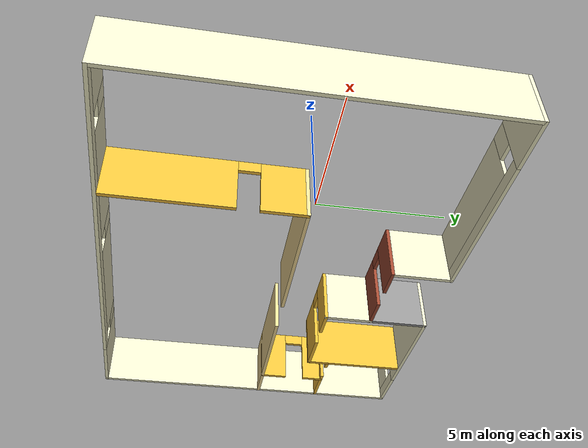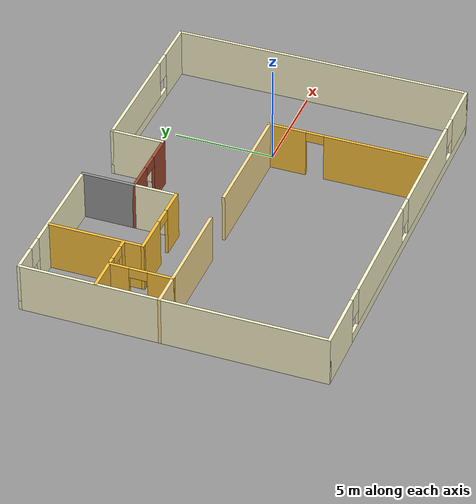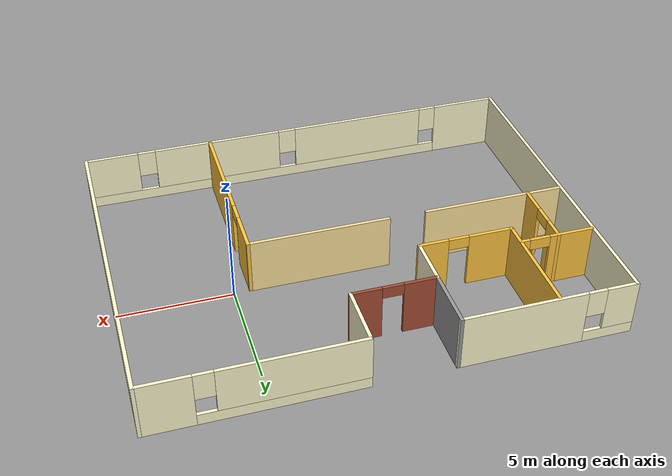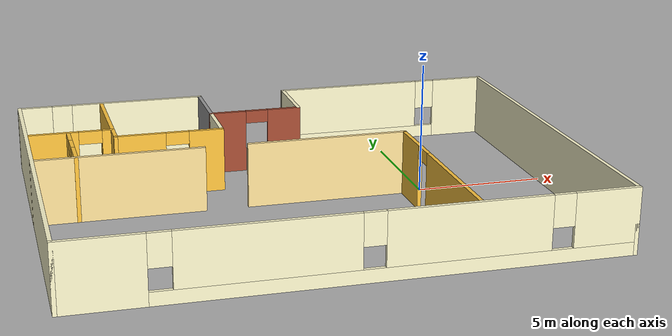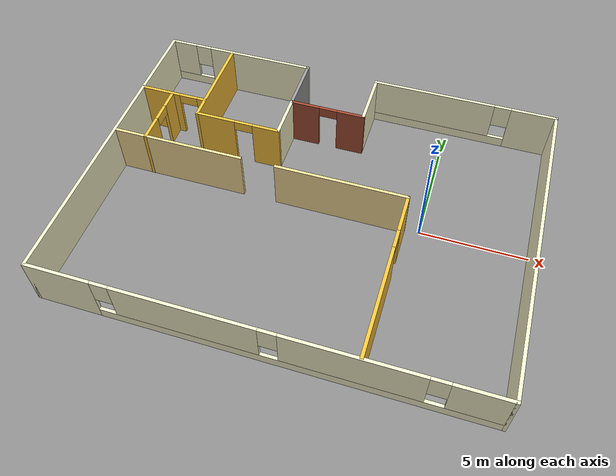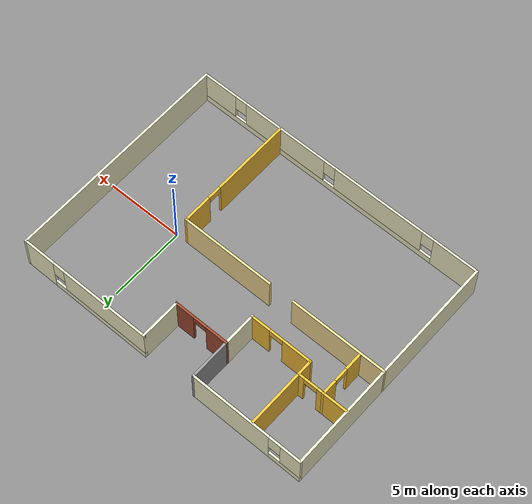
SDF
<?xml version='1.0'?>
<sdf version='1.6'>
  <model name='myHouse'>
    <pose frame=''>-4.93284 -0.706794 0 0 -0 0</pose>
    <link name='Wall_10'>
      <pose frame=''>-6.22482 7.425 0 0 -0 3.14159</pose>
      <visual name='Wall_10_Visual_0'>
        <pose frame=''>-1.08871 0 1.25 0 -0 0</pose>
        <geometry>
          <box>
            <size>5.37259 0.15 2.5</size>
          </box>
        </geometry>
        <material>
          <script>
            <uri>file://media/materials/scripts/gazebo.material</uri>
            <name>Gazebo/Grey</name>
          </script>
          <ambient>1 0.980392 0.811765 1</ambient>
        </material>
        <meta>
          <layer>0</layer>
        </meta>
      </visual>
      <collision name='Wall_10_Collision_0'>
        <geometry>
          <box>
            <size>5.37259 0.15 2.5</size>
          </box>
        </geometry>
        <pose frame=''>-1.08871 0 1.25 0 -0 0</pose>
      </collision>
      <visual name='Wall_10_Visual_1'>
        <pose frame=''>2.68629 0 0.25 0 -0 0</pose>
        <geometry>
          <box>
            <size>2.17741 0.15 0.5</size>
          </box>
        </geometry>
        <material>
          <script>
            <uri>file://media/materials/scripts/gazebo.material</uri>
            <name>Gazebo/Grey</name>
          </script>
          <ambient>1 0.980392 0.811765 1</ambient>
        </material>
        <meta>
          <layer>0</layer>
        </meta>
      </visual>
      <collision name='Wall_10_Collision_1'>
        <geometry>
          <box>
            <size>2.17741 0.15 0.5</size>
          </box>
        </geometry>
        <pose frame=''>2.68629 0 0.25 0 -0 0</pose>
      </collision>
      <visual name='Wall_10_Visual_2'>
        <pose frame=''>3.08629 0 1.5 0 -0 0</pose>
        <geometry>
          <box>
            <size>1.37741 0.15 2</size>
          </box>
        </geometry>
        <material>
          <script>
            <uri>file://media/materials/scripts/gazebo.material</uri>
            <name>Gazebo/Grey</name>
          </script>
          <ambient>1 0.980392 0.811765 1</ambient>
        </material>
        <meta>
          <layer>0</layer>
        </meta>
      </visual>
      <collision name='Wall_10_Collision_2'>
        <geometry>
          <box>
            <size>1.37741 0.15 2</size>
          </box>
        </geometry>
        <pose frame=''>3.08629 0 1.5 0 -0 0</pose>
      </collision>
      <visual name='Wall_10_Visual_3'>
        <pose frame=''>1.99759 0 1.9 0 -0 0</pose>
        <geometry>
          <box>
            <size>0.8 0.15 1.2</size>
          </box>
        </geometry>
        <material>
          <script>
            <uri>file://media/materials/scripts/gazebo.material</uri>
            <name>Gazebo/Grey</name>
          </script>
          <ambient>1 0.980392 0.811765 1</ambient>
        </material>
        <meta>
          <layer>0</layer>
        </meta>
      </visual>
      <collision name='Wall_10_Collision_3'>
        <geometry>
          <box>
            <size>0.8 0.15 1.2</size>
          </box>
        </geometry>
        <pose frame=''>1.99759 0 1.9 0 -0 0</pose>
      </collision>
    </link>
    <link name='Wall_12'>
      <collision name='Wall_12_Collision'>
        <geometry>
          <box>
            <size>2.25 0.15 2.5</size>
          </box>
        </geometry>
        <pose frame=''>0 0 1.25 0 -0 0</pose>
      </collision>
      <visual name='Wall_12_Visual'>
        <pose frame=''>0 0 1.25 0 -0 0</pose>
        <geometry>
          <box>
            <size>2.25 0.15 2.5</size>
          </box>
        </geometry>
        <material>
          <script>
            <uri>file://media/materials/scripts/gazebo.material</uri>
            <name>Gazebo/Grey</name>
          </script>
          <ambient>1 0.980392 0.811765 1</ambient>
        </material>
        <meta>
          <layer>0</layer>
        </meta>
      </visual>
      <pose frame=''>-2.52482 3.775 0 0 0 -1.5708</pose>
    </link>
    <link name='Wall_13'>
      <pose frame=''>-4.57482 2.725 0 0 -0 3.14159</pose>
      <visual name='Wall_13_Visual_0'>
        <pose frame=''>-1.44542 0 1.25 0 -0 0</pose>
        <geometry>
          <box>
            <size>1.35916 0.15 2.5</size>
          </box>
        </geometry>
        <material>
          <script>
            <uri>file://media/materials/scripts/gazebo.material</uri>
            <name>Gazebo/Grey</name>
          </script>
          <ambient>1 0.772549 0.239216 1</ambient>
        </material>
        <meta>
          <layer>0</layer>
        </meta>
      </visual>
      <collision name='Wall_13_Collision_0'>
        <geometry>
          <box>
            <size>1.35916 0.15 2.5</size>
          </box>
        </geometry>
        <pose frame=''>-1.44542 0 1.25 0 -0 0</pose>
      </collision>
      <visual name='Wall_13_Visual_1'>
        <pose frame=''>1.12958 0 1.25 0 -0 0</pose>
        <geometry>
          <box>
            <size>1.99084 0.15 2.5</size>
          </box>
        </geometry>
        <material>
          <script>
            <uri>file://media/materials/scripts/gazebo.material</uri>
            <name>Gazebo/Grey</name>
          </script>
          <ambient>1 0.772549 0.239216 1</ambient>
        </material>
        <meta>
          <layer>0</layer>
        </meta>
      </visual>
      <collision name='Wall_13_Collision_1'>
        <geometry>
          <box>
            <size>1.99084 0.15 2.5</size>
          </box>
        </geometry>
        <pose frame=''>1.12958 0 1.25 0 -0 0</pose>
      </collision>
      <visual name='Wall_13_Visual_2'>
        <pose frame=''>-0.315843 0 2.25 0 -0 0</pose>
        <geometry>
          <box>
            <size>0.9 0.15 0.5</size>
          </box>
        </geometry>
        <material>
          <script>
            <uri>file://media/materials/scripts/gazebo.material</uri>
            <name>Gazebo/Grey</name>
          </script>
          <ambient>1 0.772549 0.239216 1</ambient>
        </material>
        <meta>
          <layer>0</layer>
        </meta>
      </visual>
      <collision name='Wall_13_Collision_2'>
        <geometry>
          <box>
            <size>0.9 0.15 0.5</size>
          </box>
        </geometry>
        <pose frame=''>-0.315843 0 2.25 0 -0 0</pose>
      </collision>
    </link>
    <link name='Wall_14'>
      <collision name='Wall_14_Collision'>
        <geometry>
          <box>
            <size>4.75 0.15 2.5</size>
          </box>
        </geometry>
        <pose frame=''>0 0 1.25 0 -0 0</pose>
      </collision>
      <visual name='Wall_14_Visual'>
        <pose frame=''>0 0 1.25 0 -0 0</pose>
        <geometry>
          <box>
            <size>4.75 0.15 2.5</size>
          </box>
        </geometry>
        <material>
          <script>
            <uri>file://media/materials/scripts/gazebo.material</uri>
            <name>Gazebo/Grey</name>
          </script>
          <ambient>1 0.772549 0.239216 1</ambient>
        </material>
        <meta>
          <layer>0</layer>
        </meta>
      </visual>
      <pose frame=''>-6.62481 5.025 0 0 -0 1.5708</pose>
    </link>
    <link name='Wall_16'>
      <pose frame=''>-8.26166 3.67479 0 0 -0 0</pose>
      <visual name='Wall_16_Visual_0'>
        <pose frame=''>-0.692622 0 1.25 0 -0 0</pose>
        <geometry>
          <box>
            <size>2.03776 0.15 2.5</size>
          </box>
        </geometry>
        <material>
          <script>
            <uri>file://media/materials/scripts/gazebo.material</uri>
            <name>Gazebo/Grey</name>
          </script>
          <ambient>1 0.772549 0.239216 1</ambient>
        </material>
        <meta>
          <layer>0</layer>
        </meta>
      </visual>
      <collision name='Wall_16_Collision_0'>
        <geometry>
          <box>
            <size>2.03776 0.15 2.5</size>
          </box>
        </geometry>
        <pose frame=''>-0.692622 0 1.25 0 -0 0</pose>
      </collision>
      <visual name='Wall_16_Visual_1'>
        <pose frame=''>1.46888 0 1.25 0 -0 0</pose>
        <geometry>
          <box>
            <size>0.485244 0.15 2.5</size>
          </box>
        </geometry>
        <material>
          <script>
            <uri>file://media/materials/scripts/gazebo.material</uri>
            <name>Gazebo/Grey</name>
          </script>
          <ambient>1 0.772549 0.239216 1</ambient>
        </material>
        <meta>
          <layer>0</layer>
        </meta>
      </visual>
      <collision name='Wall_16_Collision_1'>
        <geometry>
          <box>
            <size>0.485244 0.15 2.5</size>
          </box>
        </geometry>
        <pose frame=''>1.46888 0 1.25 0 -0 0</pose>
      </collision>
      <visual name='Wall_16_Visual_2'>
        <pose frame=''>0.776256 0 2.25 0 -0 0</pose>
        <geometry>
          <box>
            <size>0.9 0.15 0.5</size>
          </box>
        </geometry>
        <material>
          <script>
            <uri>file://media/materials/scripts/gazebo.material</uri>
            <name>Gazebo/Grey</name>
          </script>
          <ambient>1 0.772549 0.239216 1</ambient>
        </material>
        <meta>
          <layer>0</layer>
        </meta>
      </visual>
      <collision name='Wall_16_Collision_2'>
        <geometry>
          <box>
            <size>0.9 0.15 0.5</size>
          </box>
        </geometry>
        <pose frame=''>0.776256 0 2.25 0 -0 0</pose>
      </collision>
    </link>
    <link name='Wall_21'>
      <pose frame=''>4.20181 -3.38793 0 0 0 -1.5708</pose>
      <visual name='Wall_21_Visual_0'>
        <pose frame=''>-3.08247 0 1.25 0 -0 0</pose>
        <geometry>
          <box>
            <size>1.94451 0.15 2.5</size>
          </box>
        </geometry>
        <material>
          <script>
            <uri>file://media/materials/scripts/gazebo.material</uri>
            <name>Gazebo/Grey</name>
          </script>
          <ambient>1 0.772549 0.239216 1</ambient>
        </material>
        <meta>
          <layer>0</layer>
        </meta>
      </visual>
      <collision name='Wall_21_Collision_0'>
        <geometry>
          <box>
            <size>1.94451 0.15 2.5</size>
          </box>
        </geometry>
        <pose frame=''>-3.08247 0 1.25 0 -0 0</pose>
      </collision>
      <visual name='Wall_21_Visual_1'>
        <pose frame=''>1.42226 0 1.25 0 -0 0</pose>
        <geometry>
          <box>
            <size>5.26493 0.15 2.5</size>
          </box>
        </geometry>
        <material>
          <script>
            <uri>file://media/materials/scripts/gazebo.material</uri>
            <name>Gazebo/Grey</name>
          </script>
          <ambient>1 0.772549 0.239216 1</ambient>
        </material>
        <meta>
          <layer>0</layer>
        </meta>
      </visual>
      <collision name='Wall_21_Collision_1'>
        <geometry>
          <box>
            <size>5.26493 0.15 2.5</size>
          </box>
        </geometry>
        <pose frame=''>1.42226 0 1.25 0 -0 0</pose>
      </collision>
      <visual name='Wall_21_Visual_2'>
        <pose frame=''>-1.66021 0 2.25 0 -0 0</pose>
        <geometry>
          <box>
            <size>0.9 0.15 0.5</size>
          </box>
        </geometry>
        <material>
          <script>
            <uri>file://media/materials/scripts/gazebo.material</uri>
            <name>Gazebo/Grey</name>
          </script>
          <ambient>1 0.772549 0.239216 1</ambient>
        </material>
        <meta>
          <layer>0</layer>
        </meta>
      </visual>
      <collision name='Wall_21_Collision_2'>
        <geometry>
          <box>
            <size>0.9 0.15 0.5</size>
          </box>
        </geometry>
        <pose frame=''>-1.66021 0 2.25 0 -0 0</pose>
      </collision>
    </link>
    <link name='Wall_23'>
      <pose frame=''>-8.33016 2.13129 0 0 0 -1.5708</pose>
      <visual name='Wall_23_Visual_0'>
        <pose frame=''>-1.09422 0 1.25 0 -0 0</pose>
        <geometry>
          <box>
            <size>1.0487 0.15 2.5</size>
          </box>
        </geometry>
        <material>
          <script>
            <uri>file://media/materials/scripts/gazebo.material</uri>
            <name>Gazebo/Grey</name>
          </script>
          <ambient>1 0.772549 0.239216 1</ambient>
        </material>
        <meta>
          <layer>0</layer>
        </meta>
      </visual>
      <collision name='Wall_23_Collision_0'>
        <geometry>
          <box>
            <size>1.0487 0.15 2.5</size>
          </box>
        </geometry>
        <pose frame=''>-1.09422 0 1.25 0 -0 0</pose>
      </collision>
      <visual name='Wall_23_Visual_1'>
        <pose frame=''>0.974348 0 1.25 0 -0 0</pose>
        <geometry>
          <box>
            <size>1.28844 0.15 2.5</size>
          </box>
        </geometry>
        <material>
          <script>
            <uri>file://media/materials/scripts/gazebo.material</uri>
            <name>Gazebo/Grey</name>
          </script>
          <ambient>1 0.772549 0.239216 1</ambient>
        </material>
        <meta>
          <layer>0</layer>
        </meta>
      </visual>
      <collision name='Wall_23_Collision_1'>
        <geometry>
          <box>
            <size>1.28844 0.15 2.5</size>
          </box>
        </geometry>
        <pose frame=''>0.974348 0 1.25 0 -0 0</pose>
      </collision>
      <visual name='Wall_23_Visual_2'>
        <pose frame=''>-0.119873 0 2.25 0 -0 0</pose>
        <geometry>
          <box>
            <size>0.9 0.15 0.5</size>
          </box>
        </geometry>
        <material>
          <script>
            <uri>file://media/materials/scripts/gazebo.material</uri>
            <name>Gazebo/Grey</name>
          </script>
          <ambient>1 0.772549 0.239216 1</ambient>
        </material>
        <meta>
          <layer>0</layer>
        </meta>
      </visual>
      <collision name='Wall_23_Collision_2'>
        <geometry>
          <box>
            <size>0.9 0.15 0.5</size>
          </box>
        </geometry>
        <pose frame=''>-0.119873 0 2.25 0 -0 0</pose>
      </collision>
    </link>
    <link name='Wall_25'>
      <collision name='Wall_25_Collision'>
        <geometry>
          <box>
            <size>6.43405 0.15 2.5</size>
          </box>
        </geometry>
        <pose frame=''>0 0 1.25 0 -0 0</pose>
      </collision>
      <visual name='Wall_25_Visual'>
        <pose frame=''>0 0 1.25 0 -0 0</pose>
        <geometry>
          <box>
            <size>6.43405 0.15 2.5</size>
          </box>
        </geometry>
        <material>
          <script>
            <uri>file://media/materials/scripts/gazebo.material</uri>
            <name>Gazebo/Grey</name>
          </script>
          <ambient>1 0.890196 0.607843 1</ambient>
        </material>
        <meta>
          <layer>0</layer>
        </meta>
      </visual>
      <pose frame=''>-6.78316 0.591794 0 0 -0 0</pose>
    </link>
    <link name='Wall_27'>
      <collision name='Wall_27_Collision'>
        <geometry>
          <box>
            <size>6.25 0.15 2.5</size>
          </box>
        </geometry>
        <pose frame=''>0 0 1.25 0 -0 0</pose>
      </collision>
      <visual name='Wall_27_Visual'>
        <pose frame=''>0 0 1.25 0 -0 0</pose>
        <geometry>
          <box>
            <size>6.25 0.15 2.5</size>
          </box>
        </geometry>
        <material>
          <script>
            <uri>file://media/materials/scripts/gazebo.material</uri>
            <name>Gazebo/Grey</name>
          </script>
          <ambient>1 0.890196 0.607843 1</ambient>
        </material>
        <meta>
          <layer>0</layer>
        </meta>
      </visual>
      <pose frame=''>1.15184 0.591794 0 0 -0 3.14159</pose>
    </link>
    <link name='Wall_3'>
      <collision name='Wall_3_Collision'>
        <geometry>
          <box>
            <size>15 0.15 2.5</size>
          </box>
        </geometry>
        <pose frame=''>0 0 1.25 0 -0 0</pose>
      </collision>
      <visual name='Wall_3_Visual'>
        <pose frame=''>0 0 1.25 0 -0 0</pose>
        <geometry>
          <box>
            <size>15 0.15 2.5</size>
          </box>
        </geometry>
        <material>
          <script>
            <uri>file://media/materials/scripts/gazebo.material</uri>
            <name>Gazebo/Grey</name>
          </script>
          <ambient>1 0.980392 0.811765 1</ambient>
        </material>
        <meta>
          <layer>0</layer>
        </meta>
      </visual>
      <pose frame=''>-9.92482 0 0 0 0 -1.5708</pose>
    </link>
    <link name='Wall_4'>
      <pose frame=''>0.000185 -7.425 0 0 -0 0</pose>
      <visual name='Wall_4_Visual_0'>
        <pose frame=''>-8.48669 0 1.25 0 -0 0</pose>
        <geometry>
          <box>
            <size>3.02663 0.15 2.5</size>
          </box>
        </geometry>
        <material>
          <script>
            <uri>file://media/materials/scripts/gazebo.material</uri>
            <name>Gazebo/Grey</name>
          </script>
          <ambient>1 0.980392 0.811765 1</ambient>
        </material>
        <meta>
          <layer>0</layer>
        </meta>
      </visual>
      <collision name='Wall_4_Collision_0'>
        <geometry>
          <box>
            <size>3.02663 0.15 2.5</size>
          </box>
        </geometry>
        <pose frame=''>-8.48669 0 1.25 0 -0 0</pose>
      </collision>
      <visual name='Wall_4_Visual_1'>
        <pose frame=''>1.51331 0 0.25 0 -0 0</pose>
        <geometry>
          <box>
            <size>16.9734 0.15 0.5</size>
          </box>
        </geometry>
        <material>
          <script>
            <uri>file://media/materials/scripts/gazebo.material</uri>
            <name>Gazebo/Grey</name>
          </script>
          <ambient>1 0.980392 0.811765 1</ambient>
        </material>
        <meta>
          <layer>0</layer>
        </meta>
      </visual>
      <collision name='Wall_4_Collision_1'>
        <geometry>
          <box>
            <size>16.9734 0.15 0.5</size>
          </box>
        </geometry>
        <pose frame=''>1.51331 0 0.25 0 -0 0</pose>
      </collision>
      <visual name='Wall_4_Visual_2'>
        <pose frame=''>-3.03555 0 1.5 0 -0 0</pose>
        <geometry>
          <box>
            <size>6.27565 0.15 2</size>
          </box>
        </geometry>
        <material>
          <script>
            <uri>file://media/materials/scripts/gazebo.material</uri>
            <name>Gazebo/Grey</name>
          </script>
          <ambient>1 0.980392 0.811765 1</ambient>
        </material>
        <meta>
          <layer>0</layer>
        </meta>
      </visual>
      <collision name='Wall_4_Collision_2'>
        <geometry>
          <box>
            <size>6.27565 0.15 2</size>
          </box>
        </geometry>
        <pose frame=''>-3.03555 0 1.5 0 -0 0</pose>
      </collision>
      <visual name='Wall_4_Visual_3'>
        <pose frame=''>3.8406 0 1.5 0 -0 0</pose>
        <geometry>
          <box>
            <size>5.87665 0.15 2</size>
          </box>
        </geometry>
        <material>
          <script>
            <uri>file://media/materials/scripts/gazebo.material</uri>
            <name>Gazebo/Grey</name>
          </script>
          <ambient>1 0.980392 0.811765 1</ambient>
        </material>
        <meta>
          <layer>0</layer>
        </meta>
      </visual>
      <collision name='Wall_4_Collision_3'>
        <geometry>
          <box>
            <size>5.87665 0.15 2</size>
          </box>
        </geometry>
        <pose frame=''>3.8406 0 1.5 0 -0 0</pose>
      </collision>
      <visual name='Wall_4_Visual_4'>
        <pose frame=''>8.78946 0 1.5 0 -0 0</pose>
        <geometry>
          <box>
            <size>2.42107 0.15 2</size>
          </box>
        </geometry>
        <material>
          <script>
            <uri>file://media/materials/scripts/gazebo.material</uri>
            <name>Gazebo/Grey</name>
          </script>
          <ambient>1 0.980392 0.811765 1</ambient>
        </material>
        <meta>
          <layer>0</layer>
        </meta>
      </visual>
      <collision name='Wall_4_Collision_4'>
        <geometry>
          <box>
            <size>2.42107 0.15 2</size>
          </box>
        </geometry>
        <pose frame=''>8.78946 0 1.5 0 -0 0</pose>
      </collision>
      <visual name='Wall_4_Visual_5'>
        <pose frame=''>-6.57338 0 1.9 0 -0 0</pose>
        <geometry>
          <box>
            <size>0.8 0.15 1.2</size>
          </box>
        </geometry>
        <material>
          <script>
            <uri>file://media/materials/scripts/gazebo.material</uri>
            <name>Gazebo/Grey</name>
          </script>
          <ambient>1 0.980392 0.811765 1</ambient>
        </material>
        <meta>
          <layer>0</layer>
        </meta>
      </visual>
      <collision name='Wall_4_Collision_5'>
        <geometry>
          <box>
            <size>0.8 0.15 1.2</size>
          </box>
        </geometry>
        <pose frame=''>-6.57338 0 1.9 0 -0 0</pose>
      </collision>
      <visual name='Wall_4_Visual_6'>
        <pose frame=''>0.502278 0 1.9 0 -0 0</pose>
        <geometry>
          <box>
            <size>0.8 0.15 1.2</size>
          </box>
        </geometry>
        <material>
          <script>
            <uri>file://media/materials/scripts/gazebo.material</uri>
            <name>Gazebo/Grey</name>
          </script>
          <ambient>1 0.980392 0.811765 1</ambient>
        </material>
        <meta>
          <layer>0</layer>
        </meta>
      </visual>
      <collision name='Wall_4_Collision_6'>
        <geometry>
          <box>
            <size>0.8 0.15 1.2</size>
          </box>
        </geometry>
        <pose frame=''>0.502278 0 1.9 0 -0 0</pose>
      </collision>
      <visual name='Wall_4_Visual_7'>
        <pose frame=''>7.17893 0 1.9 0 -0 0</pose>
        <geometry>
          <box>
            <size>0.8 0.15 1.2</size>
          </box>
        </geometry>
        <material>
          <script>
            <uri>file://media/materials/scripts/gazebo.material</uri>
            <name>Gazebo/Grey</name>
          </script>
          <ambient>1 0.980392 0.811765 1</ambient>
        </material>
        <meta>
          <layer>0</layer>
        </meta>
      </visual>
      <collision name='Wall_4_Collision_7'>
        <geometry>
          <box>
            <size>0.8 0.15 1.2</size>
          </box>
        </geometry>
        <pose frame=''>7.17893 0 1.9 0 -0 0</pose>
      </collision>
    </link>
    <link name='Wall_5'>
      <collision name='Wall_5_Collision'>
        <geometry>
          <box>
            <size>15 0.15 2.5</size>
          </box>
        </geometry>
        <pose frame=''>0 0 1.25 0 -0 0</pose>
      </collision>
      <visual name='Wall_5_Visual'>
        <pose frame=''>0 0 1.25 0 -0 0</pose>
        <geometry>
          <box>
            <size>15 0.15 2.5</size>
          </box>
        </geometry>
        <material>
          <script>
            <uri>file://media/materials/scripts/gazebo.material</uri>
            <name>Gazebo/Grey</name>
          </script>
          <ambient>1 0.980392 0.811765 1</ambient>
        </material>
        <meta>
          <layer>0</layer>
        </meta>
      </visual>
      <pose frame=''>9.92519 0 0 0 -0 1.5708</pose>
    </link>
    <link name='Wall_6'>
      <pose frame=''>5.50019 7.425 0 0 -0 3.14159</pose>
      <visual name='Wall_6_Visual_0'>
        <pose frame=''>-3.39587 0 1.25 0 -0 0</pose>
        <geometry>
          <box>
            <size>2.20827 0.15 2.5</size>
          </box>
        </geometry>
        <material>
          <script>
            <uri>file://media/materials/scripts/gazebo.material</uri>
            <name>Gazebo/Grey</name>
          </script>
          <ambient>1 0.980392 0.811765 1</ambient>
        </material>
        <meta>
          <layer>0</layer>
        </meta>
      </visual>
      <collision name='Wall_6_Collision_0'>
        <geometry>
          <box>
            <size>2.20827 0.15 2.5</size>
          </box>
        </geometry>
        <pose frame=''>-3.39587 0 1.25 0 -0 0</pose>
      </collision>
      <visual name='Wall_6_Visual_1'>
        <pose frame=''>1.10414 0 0.25 0 -0 0</pose>
        <geometry>
          <box>
            <size>6.79173 0.15 0.5</size>
          </box>
        </geometry>
        <material>
          <script>
            <uri>file://media/materials/scripts/gazebo.material</uri>
            <name>Gazebo/Grey</name>
          </script>
          <ambient>1 0.980392 0.811765 1</ambient>
        </material>
        <meta>
          <layer>0</layer>
        </meta>
      </visual>
      <collision name='Wall_6_Collision_1'>
        <geometry>
          <box>
            <size>6.79173 0.15 0.5</size>
          </box>
        </geometry>
        <pose frame=''>1.10414 0 0.25 0 -0 0</pose>
      </collision>
      <visual name='Wall_6_Visual_2'>
        <pose frame=''>1.50413 0 1.5 0 -0 0</pose>
        <geometry>
          <box>
            <size>5.99173 0.15 2</size>
          </box>
        </geometry>
        <material>
          <script>
            <uri>file://media/materials/scripts/gazebo.material</uri>
            <name>Gazebo/Grey</name>
          </script>
          <ambient>1 0.980392 0.811765 1</ambient>
        </material>
        <meta>
          <layer>0</layer>
        </meta>
      </visual>
      <collision name='Wall_6_Collision_2'>
        <geometry>
          <box>
            <size>5.99173 0.15 2</size>
          </box>
        </geometry>
        <pose frame=''>1.50413 0 1.5 0 -0 0</pose>
      </collision>
      <visual name='Wall_6_Visual_3'>
        <pose frame=''>-1.89173 0 1.9 0 -0 0</pose>
        <geometry>
          <box>
            <size>0.8 0.15 1.2</size>
          </box>
        </geometry>
        <material>
          <script>
            <uri>file://media/materials/scripts/gazebo.material</uri>
            <name>Gazebo/Grey</name>
          </script>
          <ambient>1 0.980392 0.811765 1</ambient>
        </material>
        <meta>
          <layer>0</layer>
        </meta>
      </visual>
      <collision name='Wall_6_Collision_3'>
        <geometry>
          <box>
            <size>0.8 0.15 1.2</size>
          </box>
        </geometry>
        <pose frame=''>-1.89173 0 1.9 0 -0 0</pose>
      </collision>
    </link>
    <link name='Wall_7'>
      <collision name='Wall_7_Collision'>
        <geometry>
          <box>
            <size>2.75 0.15 2.5</size>
          </box>
        </geometry>
        <pose frame=''>0 0 1.25 0 -0 0</pose>
      </collision>
      <visual name='Wall_7_Visual'>
        <pose frame=''>0 0 1.25 0 -0 0</pose>
        <geometry>
          <box>
            <size>2.75 0.15 2.5</size>
          </box>
        </geometry>
        <material>
          <script>
            <uri>file://media/materials/scripts/gazebo.material</uri>
            <name>Gazebo/Grey</name>
          </script>
          <ambient>1 0.980392 0.811765 1</ambient>
        </material>
        <meta>
          <layer>0</layer>
        </meta>
      </visual>
      <pose frame=''>1.07519 6.125 0 0 0 -1.5708</pose>
    </link>
    <link name='Wall_8'>
      <pose frame=''>-0.724815 4.825 0 0 -0 3.14159</pose>
      <visual name='Wall_8_Visual_0'>
        <pose frame=''>-1.19094 0 1.25 0 -0 0</pose>
        <geometry>
          <box>
            <size>1.36813 0.15 2.5</size>
          </box>
        </geometry>
        <material>
          <script>
            <uri>file://media/materials/scripts/gazebo.material</uri>
            <name>Gazebo/Bricks</name>
          </script>
          <ambient>1 1 1 1</ambient>
        </material>
        <meta>
          <layer>0</layer>
        </meta>
      </visual>
      <collision name='Wall_8_Collision_0'>
        <geometry>
          <box>
            <size>1.36813 0.15 2.5</size>
          </box>
        </geometry>
        <pose frame=''>-1.19094 0 1.25 0 -0 0</pose>
      </collision>
      <visual name='Wall_8_Visual_1'>
        <pose frame=''>1.13407 0 1.25 0 -0 0</pose>
        <geometry>
          <box>
            <size>1.48187 0.15 2.5</size>
          </box>
        </geometry>
        <material>
          <script>
            <uri>file://media/materials/scripts/gazebo.material</uri>
            <name>Gazebo/Bricks</name>
          </script>
          <ambient>1 1 1 1</ambient>
        </material>
        <meta>
          <layer>0</layer>
        </meta>
      </visual>
      <collision name='Wall_8_Collision_1'>
        <geometry>
          <box>
            <size>1.48187 0.15 2.5</size>
          </box>
        </geometry>
        <pose frame=''>1.13407 0 1.25 0 -0 0</pose>
      </collision>
      <visual name='Wall_8_Visual_2'>
        <pose frame=''>-0.056869 0 2.25 0 -0 0</pose>
        <geometry>
          <box>
            <size>0.9 0.15 0.5</size>
          </box>
        </geometry>
        <material>
          <script>
            <uri>file://media/materials/scripts/gazebo.material</uri>
            <name>Gazebo/Bricks</name>
          </script>
          <ambient>1 1 1 1</ambient>
        </material>
        <meta>
          <layer>0</layer>
        </meta>
      </visual>
      <collision name='Wall_8_Collision_2'>
        <geometry>
          <box>
            <size>0.9 0.15 0.5</size>
          </box>
        </geometry>
        <pose frame=''>-0.056869 0 2.25 0 -0 0</pose>
      </collision>
    </link>
    <link name='Wall_9'>
      <collision name='Wall_9_Collision'>
        <geometry>
          <box>
            <size>2.75 0.15 2.5</size>
          </box>
        </geometry>
        <pose frame=''>0 0 1.25 0 -0 0</pose>
      </collision>
      <visual name='Wall_9_Visual'>
        <pose frame=''>0 0 1.25 0 -0 0</pose>
        <geometry>
          <box>
            <size>2.75 0.15 2.5</size>
          </box>
        </geometry>
        <material>
          <script>
            <uri>file://media/materials/scripts/gazebo.material</uri>
            <name>Gazebo/Grey</name>
          </script>
          <ambient>1 1 1 1</ambient>
        </material>
        <meta>
          <layer>0</layer>
        </meta>
      </visual>
      <pose frame=''>-2.52482 6.125 0 0 -0 1.5708</pose>
    </link>
    <static>1</static>
  </model>
</sdf>
